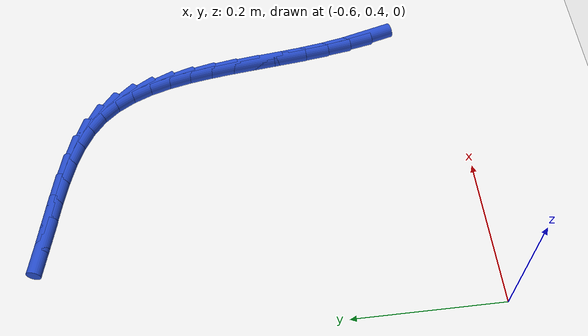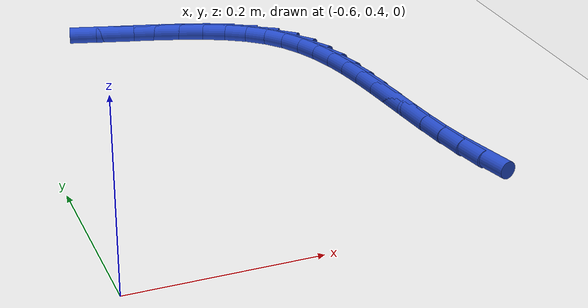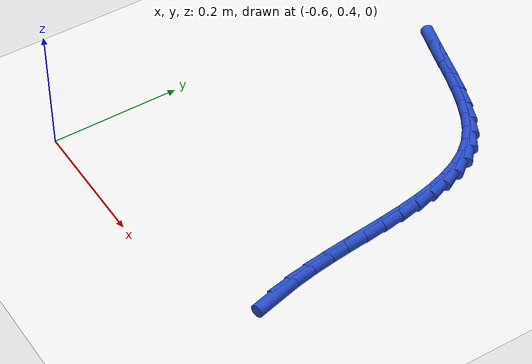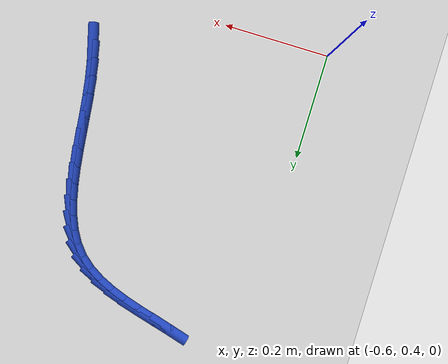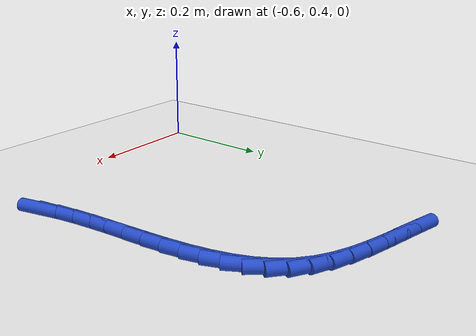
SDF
<sdf version="1.6">
 <world name="default">
  <model name="ground_plane">
   <static>1</static>
   <link name="link">
    <collision name="collision">
     <geometry><plane><normal>0 0 1</normal><size>100 100</size></plane></geometry>
     <surface><friction><ode><mu>100</mu><mu2>50</mu2></ode></friction></surface>
    </collision>
    <visual name="visual">
     <cast_shadows>0</cast_shadows>
     <geometry><plane><normal>0 0 1</normal><size>100 100</size></plane></geometry>
     <material>
      <script><uri>file://media/materials/scripts/gazebo.material</uri><name>Gazebo/WhiteGlow</name></script>
     </material>
    </visual>
   </link>
  </model>
  <model name="line">
   <link name="link_18">
    <pose>-0.17456352236248238 0.5095707344833691 0.01 0 1.57 -1.3178588512926597</pose>
    <collision name="collision">
     <geometry><cylinder><radius>0.01</radius><length>0.08</length></cylinder></geometry>
    </collision>
    <visual name="visual">
     <material>
      <script><name>Gazebo/Blue</name><uri>file://media/materials/scripts/gazebo.material</uri></script>
     </material>
     <geometry><cylinder><radius>0.01</radius><length>0.08</length></cylinder></geometry>
    </visual>
   </link>
   <link name="link_19">
    <pose>-0.1826358559558088 0.5408015592208085 0.01 0 1.57 -1.3789601367383768</pose>
    <collision name="collision">
     <geometry><cylinder><radius>0.01</radius><length>0.08</length></cylinder></geometry>
    </collision>
    <visual name="visual">
     <material>
      <script><name>Gazebo/Blue</name><uri>file://media/materials/scripts/gazebo.material</uri></script>
     </material>
     <geometry><cylinder><radius>0.01</radius><length>0.08</length></cylinder></geometry>
    </visual>
   </link>
   <link name="link_20">
    <pose>-0.18889476864185656 0.5730266847965946 0.01 0 1.57 -1.4226556502023946</pose>
    <collision name="collision">
     <geometry><cylinder><radius>0.01</radius><length>0.08</length></cylinder></geometry>
    </collision>
    <visual name="visual">
     <material>
      <script><name>Gazebo/Blue</name><uri>file://media/materials/scripts/gazebo.material</uri></script>
     </material>
     <geometry><cylinder><radius>0.01</radius><length>0.08</length></cylinder></geometry>
    </visual>
   </link>
   <link name="link_21">
    <pose>-0.19380055047208625 0.6058997784986832 0.01 0 1.57 -1.4504173991615645</pose>
    <collision name="collision">
     <geometry><cylinder><radius>0.01</radius><length>0.08</length></cylinder></geometry>
    </collision>
    <visual name="visual">
     <material>
      <script><name>Gazebo/Blue</name><uri>file://media/materials/scripts/gazebo.material</uri></script>
     </material>
     <geometry><cylinder><radius>0.01</radius><length>0.08</length></cylinder></geometry>
    </visual>
   </link>
   <link name="link_22">
    <pose>-0.19781349149795885 0.6390745076150307 0.01 0 1.57 -1.4631432965136522</pose>
    <collision name="collision">
     <geometry><cylinder><radius>0.01</radius><length>0.08</length></cylinder></geometry>
    </collision>
    <visual name="visual">
     <material>
      <script><name>Gazebo/Blue</name><uri>file://media/materials/scripts/gazebo.material</uri></script>
     </material>
     <geometry><cylinder><radius>0.01</radius><length>0.08</length></cylinder></geometry>
    </visual>
   </link>
   <link name="link_23">
    <pose>-0.20139388177093517 0.6722045394335943 0.01 0 1.57 -1.4610303962927953</pose>
    <collision name="collision">
     <geometry><cylinder><radius>0.01</radius><length>0.08</length></cylinder></geometry>
    </collision>
    <visual name="visual">
     <material>
      <script><name>Gazebo/Blue</name><uri>file://media/materials/scripts/gazebo.material</uri></script>
     </material>
     <geometry><cylinder><radius>0.01</radius><length>0.08</length></cylinder></geometry>
    </visual>
   </link>
   <link name="link_24">
    <pose>-0.20500201134247611 0.7049435412423295 0.01 0 1.57 -1.4434901492613272</pose>
    <collision name="collision">
     <geometry><cylinder><radius>0.01</radius><length>0.08</length></cylinder></geometry>
    </collision>
    <visual name="visual">
     <material>
      <script><name>Gazebo/Blue</name><uri>file://media/materials/scripts/gazebo.material</uri></script>
     </material>
     <geometry><cylinder><radius>0.01</radius><length>0.08</length></cylinder></geometry>
    </visual>
   </link>
   <link name="link_25">
    <pose>-0.2090981702640424 0.7369451803291933 0.01 0 1.57 -1.4090644106940362</pose>
    <collision name="collision">
     <geometry><cylinder><radius>0.01</radius><length>0.08</length></cylinder></geometry>
    </collision>
    <visual name="visual">
     <material>
      <script><name>Gazebo/Blue</name><uri>file://media/materials/scripts/gazebo.material</uri></script>
     </material>
     <geometry><cylinder><radius>0.01</radius><length>0.08</length></cylinder></geometry>
    </visual>
   </link>
   <link name="link_26">
    <pose>-0.21414264858709503 0.7678631239821418 0.01 0 1.57 -1.3553542808637529</pose>
    <collision name="collision">
     <geometry><cylinder><radius>0.01</radius><length>0.08</length></cylinder></geometry>
    </collision>
    <visual name="visual">
     <material>
      <script><name>Gazebo/Blue</name><uri>file://media/materials/scripts/gazebo.material</uri></script>
     </material>
     <geometry><cylinder><radius>0.01</radius><length>0.08</length></cylinder></geometry>
    </visual>
   </link>
   <link name="link_27">
    <pose>-0.22059573636309462 0.7973510394891314 0.01 0 1.57 -1.2790574599209898</pose>
    <collision name="collision">
     <geometry><cylinder><radius>0.01</radius><length>0.08</length></cylinder></geometry>
    </collision>
    <visual name="visual">
     <material>
      <script><name>Gazebo/Blue</name><uri>file://media/materials/scripts/gazebo.material</uri></script>
     </material>
     <geometry><cylinder><radius>0.01</radius><length>0.08</length></cylinder></geometry>
    </visual>
   </link>
   <link name="link_28">
    <pose>-0.22891772364350227 0.8250625941381189 0.01 0 1.57 -1.1763665041440985</pose>
    <collision name="collision">
     <geometry><cylinder><radius>0.01</radius><length>0.08</length></cylinder></geometry>
    </collision>
    <visual name="visual">
     <material>
      <script><name>Gazebo/Blue</name><uri>file://media/materials/scripts/gazebo.material</uri></script>
     </material>
     <geometry><cylinder><radius>0.01</radius><length>0.08</length></cylinder></geometry>
    </visual>
   </link>
   <link name="link_29">
    <pose>-0.23956890047977863 0.85065145521706 0.01 0 1.57 -1.0442048724905517</pose>
    <collision name="collision">
     <geometry><cylinder><radius>0.01</radius><length>0.08</length></cylinder></geometry>
    </collision>
    <visual name="visual">
     <material>
      <script><name>Gazebo/Blue</name><uri>file://media/materials/scripts/gazebo.material</uri></script>
     </material>
     <geometry><cylinder><radius>0.01</radius><length>0.08</length></cylinder></geometry>
    </visual>
   </link>
   <link name="link_30">
    <pose>-0.25300955692338456 0.8737712900139115 0.01 0 1.57 -0.8827796427617055</pose>
    <collision name="collision">
     <geometry><cylinder><radius>0.01</radius><length>0.08</length></cylinder></geometry>
    </collision>
    <visual name="visual">
     <material>
      <script><name>Gazebo/Blue</name><uri>file://media/materials/scripts/gazebo.material</uri></script>
     </material>
     <geometry><cylinder><radius>0.01</radius><length>0.08</length></cylinder></geometry>
    </visual>
   </link>
   <link name="link_31">
    <pose>-0.269699983025781 0.8940757658166298 0.01 0 1.57 -0.7034686367013089</pose>
    <collision name="collision">
     <geometry><cylinder><radius>0.01</radius><length>0.08</length></cylinder></geometry>
    </collision>
    <visual name="visual">
     <material>
      <script><name>Gazebo/Blue</name><uri>file://media/materials/scripts/gazebo.material</uri></script>
     </material>
     <geometry><cylinder><radius>0.01</radius><length>0.08</length></cylinder></geometry>
    </visual>
   </link>
   <link name="link_32">
    <pose>-0.29000554535036516 0.9112996593205785 0.01 0 1.57 -0.5485828809500631</pose>
    <collision name="collision">
     <geometry><cylinder><radius>0.01</radius><length>0.08</length></cylinder></geometry>
    </collision>
    <visual name="visual">
     <material>
      <script><name>Gazebo/Blue</name><uri>file://media/materials/scripts/gazebo.material</uri></script>
     </material>
     <geometry><cylinder><radius>0.01</radius><length>0.08</length></cylinder></geometry>
    </visual>
   </link>
   <link name="link_33">
    <pose>-0.3136335221023308 0.9257400649134462 0.01 0 1.57 -0.43294949704175384</pose>
    <collision name="collision">
     <geometry><cylinder><radius>0.01</radius><length>0.08</length></cylinder></geometry>
    </collision>
    <visual name="visual">
     <material>
      <script><name>Gazebo/Blue</name><uri>file://media/materials/scripts/gazebo.material</uri></script>
     </material>
     <geometry><cylinder><radius>0.01</radius><length>0.08</length></cylinder></geometry>
    </visual>
   </link>
   <link name="link_34">
    <pose>-0.34001242000396475 0.9379322792471011 0.01 0 1.57 -0.35172746434491803</pose>
    <collision name="collision">
     <geometry><cylinder><radius>0.01</radius><length>0.08</length></cylinder></geometry>
    </collision>
    <visual name="visual">
     <material>
      <script><name>Gazebo/Blue</name><uri>file://media/materials/scripts/gazebo.material</uri></script>
     </material>
     <geometry><cylinder><radius>0.01</radius><length>0.08</length></cylinder></geometry>
    </visual>
   </link>
   <link name="link_35">
    <pose>-0.3685697426761781 0.9484124560948661 0.01 0 1.57 -0.29920421609278836</pose>
    <collision name="collision">
     <geometry><cylinder><radius>0.01</radius><length>0.08</length></cylinder></geometry>
    </collision>
    <visual name="visual">
     <material>
      <script><name>Gazebo/Blue</name><uri>file://media/materials/scripts/gazebo.material</uri></script>
     </material>
     <geometry><cylinder><radius>0.01</radius><length>0.08</length></cylinder></geometry>
    </visual>
   </link>
   <link name="link_36">
    <pose>-0.39873299373988236 0.957716749230064 0.01 0 1.57 -0.27091167237341246</pose>
    <collision name="collision">
     <geometry><cylinder><radius>0.01</radius><length>0.08</length></cylinder></geometry>
    </collision>
    <visual name="visual">
     <material>
      <script><name>Gazebo/Blue</name><uri>file://media/materials/scripts/gazebo.material</uri></script>
     </material>
     <geometry><cylinder><radius>0.01</radius><length>0.08</length></cylinder></geometry>
    </visual>
   </link>
   <link name="link_37">
    <pose>-0.4299296768159884 0.9663813124260171 0.01 0 1.57 -0.2641071932923933</pose>
    <collision name="collision">
     <geometry><cylinder><radius>0.01</radius><length>0.08</length></cylinder></geometry>
    </collision>
    <visual name="visual">
     <material>
      <script><name>Gazebo/Blue</name><uri>file://media/materials/scripts/gazebo.material</uri></script>
     </material>
     <geometry><cylinder><radius>0.01</radius><length>0.08</length></cylinder></geometry>
    </visual>
   </link>
   <link name="link_38">
    <pose>-0.461587295525408 0.9749422994560483 0.01 0 1.57 -0.2777252956315099</pose>
    <collision name="collision">
     <geometry><cylinder><radius>0.01</radius><length>0.08</length></cylinder></geometry>
    </collision>
    <visual name="visual">
     <material>
      <script><name>Gazebo/Blue</name><uri>file://media/materials/scripts/gazebo.material</uri></script>
     </material>
     <geometry><cylinder><radius>0.01</radius><length>0.08</length></cylinder></geometry>
    </visual>
   </link>
  </model>
 </world>
</sdf>
